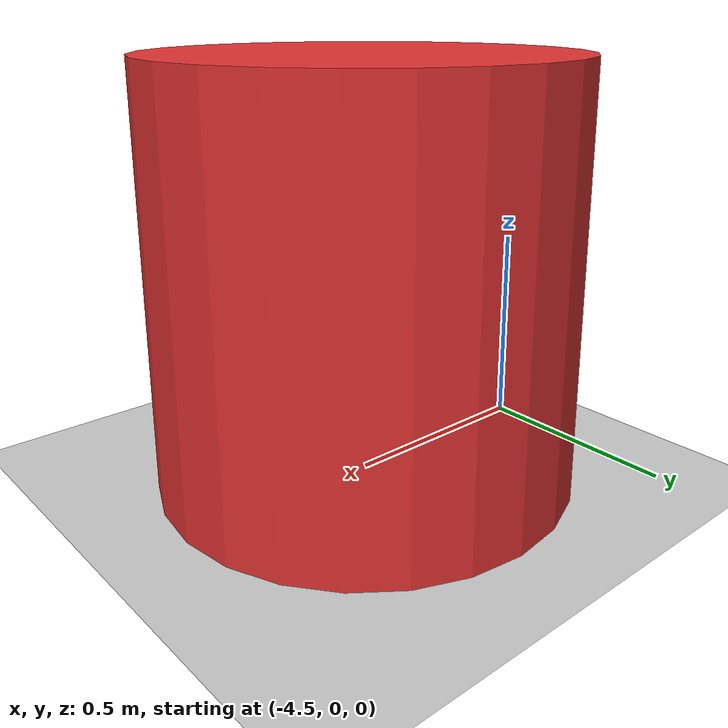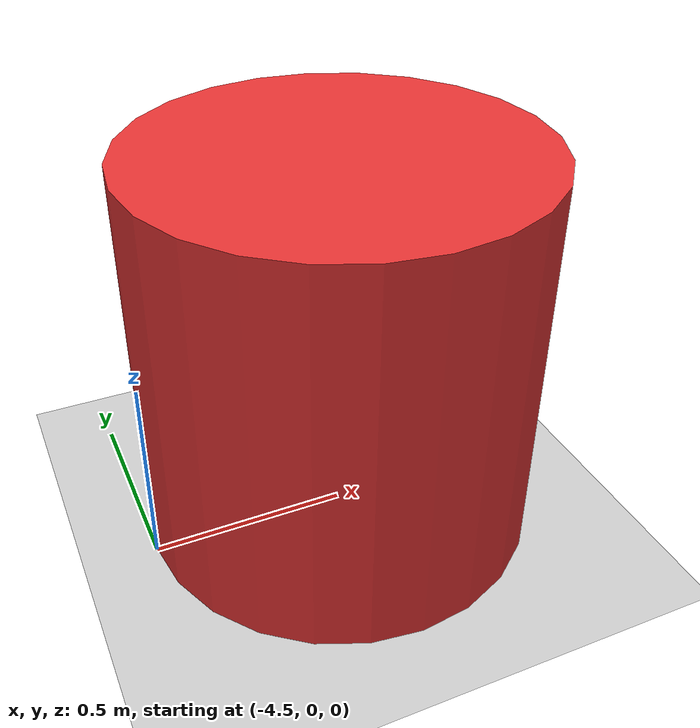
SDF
<?xml version="1.0" ?>
<!-- Copyright 2026 barn-2027-prep contributors. MIT License. -->
<!-- Minimal gz-sim 8 (Harmonic) world that drives a cylinder obstacle along a
     cubic Catmull-Rom waypoint path via the barn::sim::DynamicObstacle plugin. -->
<sdf version="1.10">
  <world name="moving_cylinder_demo">

    <physics name="1ms" type="ignored">
      <max_step_size>0.001</max_step_size>
      <real_time_factor>1.0</real_time_factor>
    </physics>

    <!-- Core systems needed to run headless. -->
    <plugin filename="gz-sim-physics-system"
            name="gz::sim::systems::Physics"/>
    <plugin filename="gz-sim-user-commands-system"
            name="gz::sim::systems::UserCommands"/>
    <plugin filename="gz-sim-scene-broadcaster-system"
            name="gz::sim::systems::SceneBroadcaster"/>

    <light type="directional" name="sun">
      <cast_shadows>true</cast_shadows>
      <pose>0 0 10 0 0 0</pose>
      <diffuse>0.8 0.8 0.8 1</diffuse>
      <specular>0.2 0.2 0.2 1</specular>
      <direction>-0.5 0.1 -0.9</direction>
    </light>

    <model name="ground_plane">
      <static>true</static>
      <link name="link">
        <collision name="collision">
          <geometry>
            <plane>
              <normal>0 0 1</normal>
              <size>100 100</size>
            </plane>
          </geometry>
        </collision>
        <visual name="visual">
          <geometry>
            <plane>
              <normal>0 0 1</normal>
              <size>100 100</size>
            </plane>
          </geometry>
          <material>
            <ambient>0.8 0.8 0.8 1</ambient>
            <diffuse>0.8 0.8 0.8 1</diffuse>
          </material>
        </visual>
      </link>
    </model>

    <!-- Dynamic obstacle: a cylinder driven purely by LinearVelocityCmd.
         Gravity is disabled on the link so the velocity command has full
         planar control and the cylinder stays upright. -->
    <model name="obstacle_0">
      <pose>-4 0 0.5 0 0 0</pose>
      <link name="link">
        <gravity>0</gravity>
        <inertial>
          <mass>50.0</mass>
          <inertia>
            <ixx>4.4</ixx>
            <iyy>4.4</iyy>
            <izz>6.25</izz>
            <ixy>0</ixy>
            <ixz>0</ixz>
            <iyz>0</iyz>
          </inertia>
        </inertial>
        <collision name="collision">
          <geometry>
            <cylinder>
              <radius>0.5</radius>
              <length>1.0</length>
            </cylinder>
          </geometry>
        </collision>
        <visual name="visual">
          <geometry>
            <cylinder>
              <radius>0.5</radius>
              <length>1.0</length>
            </cylinder>
          </geometry>
          <material>
            <ambient>0.9 0.2 0.2 1</ambient>
            <diffuse>0.9 0.2 0.2 1</diffuse>
          </material>
        </visual>
      </link>

      <!-- Cubic waypoint path (S-curve). -->
      <plugin filename="barn_dynamic_obstacle"
              name="barn::sim::DynamicObstacle">
        <speed>1.0</speed>
        <loop>true</loop>
        <waypoint>-4 0</waypoint>
        <waypoint>-1 1.5</waypoint>
        <waypoint>2 -1.5</waypoint>
        <waypoint>5 0</waypoint>
      </plugin>
    </model>

  </world>
</sdf>
